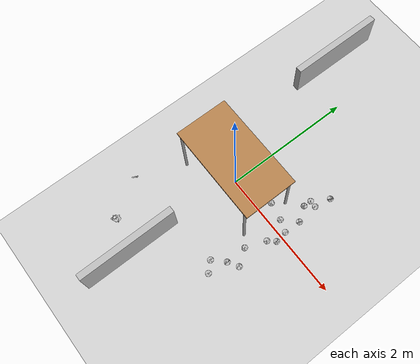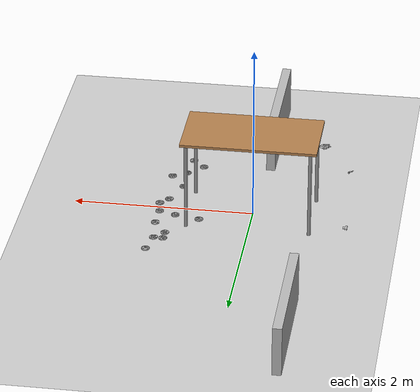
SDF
<sdf version="1.7">
 <world name="default">
  <model name="ground_plane">
   <static>1</static>
   <link name="link">
    <collision name="collision">
     <geometry><plane><normal>0 0 1</normal><size>100 100</size></plane></geometry>
     <surface>
      <contact><collide_bitmask>65535</collide_bitmask></contact>
      <friction><ode><mu>100</mu><mu2>50</mu2></ode></friction>
     </surface>
    </collision>
    <visual name="visual">
     <cast_shadows>0</cast_shadows>
     <geometry><plane><normal>0 0 1</normal><size>100 100</size></plane></geometry>
     <material>
      <script><uri>file://media/materials/scripts/gazebo.material</uri><name>Gazebo/Grey</name></script>
     </material>
    </visual>
   </link>
  </model>
  <model name="HV8">
   <pose>0.966192 -0.194102 -2.5e-05 -0.000347 0.000837 0.002591</pose>
   <static>0</static>
   <link name="HV8">
    <inertial>
     <mass>0.05</mass>
     <inertia><ixx>0.0002</ixx><ixy>0</ixy><ixz>0</ixz><iyy>0.0002</iyy><iyz>0</iyz><izz>0.0002</izz></inertia>
    </inertial>
    <collision name="collishin">
     <geometry><mesh><uri>model://HV8/meshes/HV8_1.stl</uri></mesh></geometry>
    </collision>
    <visual name="visual"><geometry><mesh><uri>model://HV8/meshes/HV8_1.stl</uri></mesh></geometry></visual>
   </link>
  </model>
  <model name="HV8_2">
   <pose>1.05782 -0.091825 3e-06 -0.000164 -2.7e-05 0.000556</pose>
   <static>0</static>
   <link name="HV8">
    <inertial>
     <mass>0.05</mass>
     <inertia><ixx>0.0002</ixx><ixy>0</ixy><ixz>0</ixz><iyy>0.0002</iyy><iyz>0</iyz><izz>0.0002</izz></inertia>
    </inertial>
    <collision name="collishin">
     <geometry><mesh><uri>model://HV8/meshes/HV8_1.stl</uri></mesh></geometry>
    </collision>
    <visual name="visual"><geometry><mesh><uri>model://HV8/meshes/HV8_1.stl</uri></mesh></geometry></visual>
   </link>
  </model>
  <model name="HV8_3">
   <pose>1.03089 0.088535 -1.8e-05 0.000274 0.000329 0.000557</pose>
   <static>0</static>
   <link name="HV8">
    <inertial>
     <mass>0.05</mass>
     <inertia><ixx>0.0002</ixx><ixy>0</ixy><ixz>0</ixz><iyy>0.0002</iyy><iyz>0</iyz><izz>0.0002</izz></inertia>
    </inertial>
    <collision name="collishin">
     <geometry><mesh><uri>model://HV8/meshes/HV8_1.stl</uri></mesh></geometry>
    </collision>
    <visual name="visual"><geometry><mesh><uri>model://HV8/meshes/HV8_1.stl</uri></mesh></geometry></visual>
   </link>
  </model>
  <model name="HV8_4">
   <pose>1.03887 0.345857 -1.8e-05 0.000274 0.000329 0.000556</pose>
   <static>0</static>
   <link name="HV8">
    <inertial>
     <mass>0.05</mass>
     <inertia><ixx>0.0002</ixx><ixy>0</ixy><ixz>0</ixz><iyy>0.0002</iyy><iyz>0</iyz><izz>0.0002</izz></inertia>
    </inertial>
    <collision name="collishin">
     <geometry><mesh><uri>model://HV8/meshes/HV8_1.stl</uri></mesh></geometry>
    </collision>
    <visual name="visual"><geometry><mesh><uri>model://HV8/meshes/HV8_1.stl</uri></mesh></geometry></visual>
   </link>
  </model>
  <model name="HV8_6">
   <pose>1.00592 0.671777 -1.8e-05 0.000274 0.000329 0.000719</pose>
   <static>0</static>
   <link name="HV8">
    <inertial>
     <mass>0.05</mass>
     <inertia><ixx>0.0002</ixx><ixy>0</ixy><ixz>0</ixz><iyy>0.0002</iyy><iyz>0</iyz><izz>0.0002</izz></inertia>
    </inertial>
    <collision name="collishin">
     <geometry><mesh><uri>model://HV8/meshes/HV8_1.stl</uri></mesh></geometry>
    </collision>
    <visual name="visual"><geometry><mesh><uri>model://HV8/meshes/HV8_1.stl</uri></mesh></geometry></visual>
   </link>
  </model>
  <model name="HV8_10">
   <pose>1.01221 -0.7272 -1.8e-05 0.000274 0.000329 0.001167</pose>
   <static>0</static>
   <link name="HV8">
    <inertial>
     <mass>0.05</mass>
     <inertia><ixx>0.0002</ixx><ixy>0</ixy><ixz>0</ixz><iyy>0.0002</iyy><iyz>0</iyz><izz>0.0002</izz></inertia>
    </inertial>
    <collision name="collishin">
     <geometry><mesh><uri>model://HV8/meshes/HV8_1.stl</uri></mesh></geometry>
    </collision>
    <visual name="visual"><geometry><mesh><uri>model://HV8/meshes/HV8_1.stl</uri></mesh></geometry></visual>
   </link>
  </model>
  <model name="HV8_11">
   <pose>0.857526 -0.819262 -1.8e-05 0.000274 0.000329 0.00055</pose>
   <static>0</static>
   <link name="HV8">
    <inertial>
     <mass>0.05</mass>
     <inertia><ixx>0.0002</ixx><ixy>0</ixy><ixz>0</ixz><iyy>0.0002</iyy><iyz>0</iyz><izz>0.0002</izz></inertia>
    </inertial>
    <collision name="collishin">
     <geometry><mesh><uri>model://HV8/meshes/HV8_1.stl</uri></mesh></geometry>
    </collision>
    <visual name="visual"><geometry><mesh><uri>model://HV8/meshes/HV8_1.stl</uri></mesh></geometry></visual>
   </link>
  </model>
  <model name="HV8_12">
   <pose>0.823647 -1.11985 -3e-06 -0.000159 7.4e-05 0.00055</pose>
   <static>0</static>
   <link name="HV8">
    <inertial>
     <mass>0.05</mass>
     <inertia><ixx>0.0002</ixx><ixy>0</ixy><ixz>0</ixz><iyy>0.0002</iyy><iyz>0</iyz><izz>0.0002</izz></inertia>
    </inertial>
    <collision name="collishin">
     <geometry><mesh><uri>model://HV8/meshes/HV8_1.stl</uri></mesh></geometry>
    </collision>
    <visual name="visual"><geometry><mesh><uri>model://HV8/meshes/HV8_1.stl</uri></mesh></geometry></visual>
   </link>
  </model>
  <model name="HV8_13">
   <pose>0.850455 -0.502552 3e-06 -0.000164 -2.7e-05 0.00055</pose>
   <static>0</static>
   <link name="HV8">
    <inertial>
     <mass>0.05</mass>
     <inertia><ixx>0.0002</ixx><ixy>0</ixy><ixz>0</ixz><iyy>0.0002</iyy><iyz>0</iyz><izz>0.0002</izz></inertia>
    </inertial>
    <collision name="collishin">
     <geometry><mesh><uri>model://HV8/meshes/HV8_1.stl</uri></mesh></geometry>
    </collision>
    <visual name="visual"><geometry><mesh><uri>model://HV8/meshes/HV8_1.stl</uri></mesh></geometry></visual>
   </link>
  </model>
  <model name="HV8_14">
   <pose>0.69058 -0.984446 -1.8e-05 0.000274 0.000329 0.00055</pose>
   <static>0</static>
   <link name="HV8">
    <inertial>
     <mass>0.05</mass>
     <inertia><ixx>0.0002</ixx><ixy>0</ixy><ixz>0</ixz><iyy>0.0002</iyy><iyz>0</iyz><izz>0.0002</izz></inertia>
    </inertial>
    <collision name="collishin">
     <geometry><mesh><uri>model://HV8/meshes/HV8_1.stl</uri></mesh></geometry>
    </collision>
    <visual name="visual"><geometry><mesh><uri>model://HV8/meshes/HV8_1.stl</uri></mesh></geometry></visual>
   </link>
  </model>
  <model name="HV8_20">
   <pose>0.898946 0.552614 3e-06 -0.000164 -2.7e-05 0.000548</pose>
   <static>0</static>
   <link name="HV8">
    <inertial>
     <mass>0.05</mass>
     <inertia><ixx>0.0002</ixx><ixy>0</ixy><ixz>0</ixz><iyy>0.0002</iyy><iyz>0</iyz><izz>0.0002</izz></inertia>
    </inertial>
    <collision name="collishin">
     <geometry><mesh><uri>model://HV8/meshes/HV8_1.stl</uri></mesh></geometry>
    </collision>
    <visual name="visual"><geometry><mesh><uri>model://HV8/meshes/HV8_1.stl</uri></mesh></geometry></visual>
   </link>
  </model>
  <model name="HV8_21">
   <pose>0.901767 0.675271 3e-06 -0.000164 -2.7e-05 0.000547</pose>
   <static>0</static>
   <link name="HV8">
    <inertial>
     <mass>0.05</mass>
     <inertia><ixx>0.0002</ixx><ixy>0</ixy><ixz>0</ixz><iyy>0.0002</iyy><iyz>0</iyz><izz>0.0002</izz></inertia>
    </inertial>
    <collision name="collishin">
     <geometry><mesh><uri>model://HV8/meshes/HV8_1.stl</uri></mesh></geometry>
    </collision>
    <visual name="visual"><geometry><mesh><uri>model://HV8/meshes/HV8_1.stl</uri></mesh></geometry></visual>
   </link>
  </model>
  <model name="HV8_22">
   <pose>1.05285 0.922039 -3e-06 -0.000159 7.4e-05 0.000547</pose>
   <static>0</static>
   <link name="HV8">
    <inertial>
     <mass>0.05</mass>
     <inertia><ixx>0.0002</ixx><ixy>0</ixy><ixz>0</ixz><iyy>0.0002</iyy><iyz>0</iyz><izz>0.0002</izz></inertia>
    </inertial>
    <collision name="collishin">
     <geometry><mesh><uri>model://HV8/meshes/HV8_1.stl</uri></mesh></geometry>
    </collision>
    <visual name="visual"><geometry><mesh><uri>model://HV8/meshes/HV8_1.stl</uri></mesh></geometry></visual>
   </link>
  </model>
  <model name="HV8_29">
   <pose>0.845933 0.151546 -1.8e-05 0.000274 0.000329 0.000546</pose>
   <static>0</static>
   <link name="HV8">
    <inertial>
     <mass>0.05</mass>
     <inertia><ixx>0.0002</ixx><ixy>0</ixy><ixz>0</ixz><iyy>0.0002</iyy><iyz>0</iyz><izz>0.0002</izz></inertia>
    </inertial>
    <collision name="collishin">
     <geometry><mesh><uri>model://HV8/meshes/HV8_1.stl</uri></mesh></geometry>
    </collision>
    <visual name="visual"><geometry><mesh><uri>model://HV8/meshes/HV8_1.stl</uri></mesh></geometry></visual>
   </link>
  </model>
  <model name="HV8_30">
   <pose>0.572982 0.210201 -3e-06 -0.000159 7.4e-05 0.000548</pose>
   <static>0</static>
   <link name="HV8">
    <inertial>
     <mass>0.05</mass>
     <inertia><ixx>0.0002</ixx><ixy>0</ixy><ixz>0</ixz><iyy>0.0002</iyy><iyz>0</iyz><izz>0.0002</izz></inertia>
    </inertial>
    <collision name="collishin">
     <geometry><mesh><uri>model://HV8/meshes/HV8_1.stl</uri></mesh></geometry>
    </collision>
    <visual name="visual"><geometry><mesh><uri>model://HV8/meshes/HV8_1.stl</uri></mesh></geometry></visual>
   </link>
  </model>
  <model name="t_pipe">
   <pose>-1.05631 0.161841 0 0 -0 0</pose>
   <static>1</static>
   <link name="t_pipe">
    <inertial>
     <mass>0.2</mass>
     <inertia><ixx>0.0005</ixx><ixy>0</ixy><ixz>0</ixz><iyy>0.0005</iyy><iyz>0</iyz><izz>0.0005</izz></inertia>
    </inertial>
    <collision name="collishin">
     <geometry><mesh><uri>model://t_pipe/meshes/t_pipe_1.stl</uri></mesh></geometry>
    </collision>
    <visual name="visual"><geometry><mesh><uri>model://t_pipe/meshes/t_pipe_1.stl</uri></mesh></geometry></visual>
   </link>
  </model>
  <model name="table">
   <static>1</static>
   <link name="link">
    <collision name="surface">
     <pose>0 0 1 0 -0 0</pose>
     <geometry><box><size>1.5 0.8 0.03</size></box></geometry>
     <surface><friction><ode><mu>0.6</mu><mu2>0.6</mu2></ode></friction></surface>
    </collision>
    <visual name="visual1">
     <pose>0 0 1 0 -0 0</pose>
     <geometry><box><size>1.5 0.8 0.03</size></box></geometry>
     <material>
      <script><uri>file://media/materials/scripts/gazebo.material</uri><name>Gazebo/Wood</name></script>
     </material>
    </visual>
    <collision name="front_left_leg">
     <pose>0.68 0.38 0.5 0 -0 0</pose>
     <geometry><cylinder><radius>0.02</radius><length>1</length></cylinder></geometry>
    </collision>
    <visual name="front_left_leg">
     <pose>0.68 0.38 0.5 0 -0 0</pose>
     <geometry><cylinder><radius>0.02</radius><length>1</length></cylinder></geometry>
     <material>
      <script><uri>file://media/materials/scripts/gazebo.material</uri><name>Gazebo/Grey</name></script>
     </material>
    </visual>
    <collision name="front_right_leg">
     <pose>0.68 -0.38 0.5 0 -0 0</pose>
     <geometry><cylinder><radius>0.02</radius><length>1</length></cylinder></geometry>
    </collision>
    <visual name="front_right_leg">
     <pose>0.68 -0.38 0.5 0 -0 0</pose>
     <geometry><cylinder><radius>0.02</radius><length>1</length></cylinder></geometry>
     <material>
      <script><uri>file://media/materials/scripts/gazebo.material</uri><name>Gazebo/Grey</name></script>
     </material>
    </visual>
    <collision name="back_right_leg">
     <pose>-0.68 -0.38 0.5 0 -0 0</pose>
     <geometry><cylinder><radius>0.02</radius><length>1</length></cylinder></geometry>
    </collision>
    <visual name="back_right_leg">
     <pose>-0.68 -0.38 0.5 0 -0 0</pose>
     <geometry><cylinder><radius>0.02</radius><length>1</length></cylinder></geometry>
     <material>
      <script><uri>file://media/materials/scripts/gazebo.material</uri><name>Gazebo/Grey</name></script>
     </material>
    </visual>
    <collision name="back_left_leg">
     <pose>-0.68 0.38 0.5 0 -0 0</pose>
     <geometry><cylinder><radius>0.02</radius><length>1</length></cylinder></geometry>
    </collision>
    <visual name="back_left_leg">
     <pose>-0.68 0.38 0.5 0 -0 0</pose>
     <geometry><cylinder><radius>0.02</radius><length>1</length></cylinder></geometry>
     <material>
      <script><uri>file://media/materials/scripts/gazebo.material</uri><name>Gazebo/Grey</name></script>
     </material>
    </visual>
   </link>
   <pose>0.014165 -0.010452 0 0 -0 0</pose>
  </model>
  <model name="HV6">
   <pose>-0.63283 -1.67523 0 0 -0 0</pose>
   <static>1</static>
   <link name="HV6">
    <collision name="collr"><geometry><mesh><uri>model://HV6/meshes/HV6_1.stl</uri></mesh></geometry></collision>
    <visual name="visual"><geometry><mesh><uri>model://HV6/meshes/HV6_1.stl</uri></mesh></geometry></visual>
   </link>
  </model>
  <model name="HV7">
   <pose>-0.99535 -1.12947 0 0 -0 0</pose>
   <static>1</static>
   <link name="HV7">
    <inertial>
     <mass>0.2</mass>
     <inertia><ixx>0.0005</ixx><ixy>0</ixy><ixz>0</ixz><iyy>0.0005</iyy><iyz>0</iyz><izz>0.0005</izz></inertia>
    </inertial>
    <collision name="collishin">
     <geometry><mesh><uri>model://HV7/meshes/HV7_1.stl</uri></mesh></geometry>
    </collision>
    <visual name="visual"><geometry><mesh><uri>model://HV7/meshes/HV7_1.stl</uri></mesh></geometry></visual>
   </link>
  </model>
  <model name="collision_object">
   <pose>-0.659478 2.46064 0.274699 -0.000404 1.9e-05 0.001764</pose>
   <static>0</static>
   <link name="collision_object">
    <inertial>
     <mass>1</mass>
     <inertia><ixx>0.1</ixx><ixy>0</ixy><ixz>0</ixz><iyy>0.1</iyy><iyz>0</iyz><izz>0.1</izz></inertia>
    </inertial>
    <collision name="collision"><geometry><box><size>0.1 1.5 0.55</size></box></geometry></collision>
    <visual name="visual"><geometry><box><size>0.1 1.5 0.55</size></box></geometry></visual>
   </link>
  </model>
  <model name="collision_object_0">
   <pose>-0.070858 -1.77812 0.274699 0.000404 -1.9e-05 0.000887</pose>
   <static>0</static>
   <link name="collision_object">
    <inertial>
     <mass>1</mass>
     <inertia><ixx>0.1</ixx><ixy>0</ixy><ixz>0</ixz><iyy>0.1</iyy><iyz>0</iyz><izz>0.1</izz></inertia>
    </inertial>
    <collision name="collision"><geometry><box><size>0.1 1.5 0.55</size></box></geometry></collision>
    <visual name="visual"><geometry><box><size>0.1 1.5 0.55</size></box></geometry></visual>
   </link>
  </model>
 </world>
</sdf>
